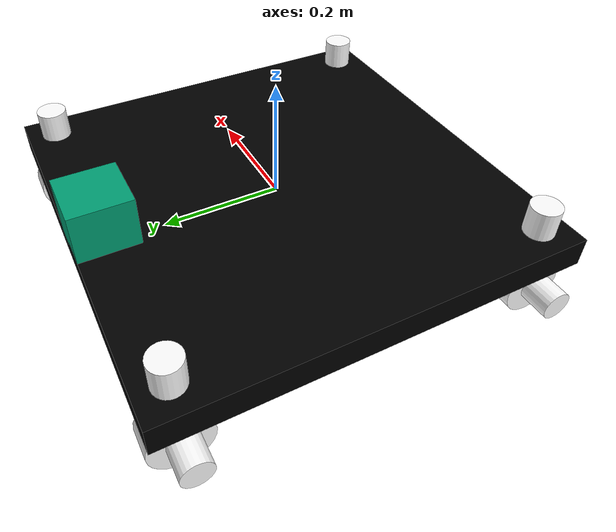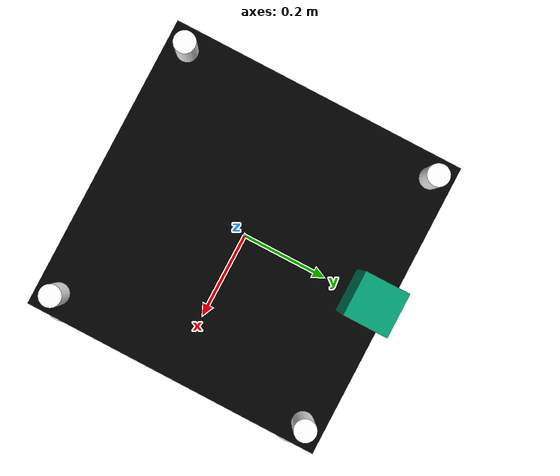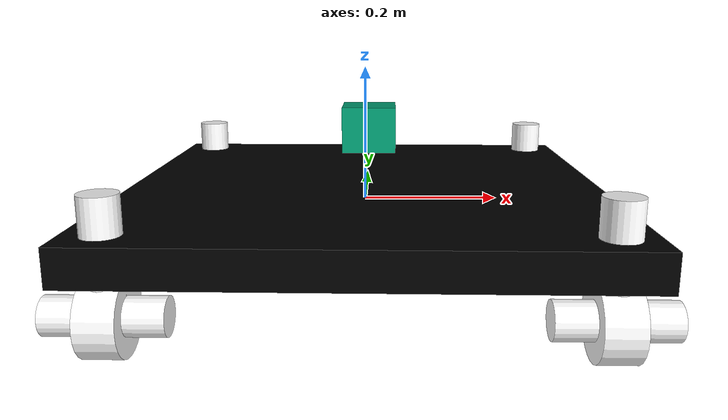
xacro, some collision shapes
<?xml version = "1.0"?>

<robot xmlns:xacro="http://www.ros.org/wiki/xacro" name="swerve_robot">
<xacro:include filename= "$(find dog_robot)/urdf/sewrve_wheel.xacro"/>

<!-- base link -->
<xacro:property name="base_link_l" value = "0.7"/>
<xacro:property name ="base_link_h" value= "0.05"/>

<!-- box -->
<xacro:property name = "box" value = "0.05"/>
<xacro:property name = "box_x" value = "0.38"/>
<xacro:property name = "box_y" value = "0"/>
<xacro:property name = "box_z" value = "0.04"/>

<!-- mass -->
<!-- box -->
<xacro:property name = "base_mass" value = "5"/>
<xacro:property name = "box" value = "0.05"/>
<xacro:property name = "box_x" value = "0.38"/>
<xacro:property name = "box_y" value = "0"/>
<xacro:property name = "box_z" value = "0.04"/>
<xacro:property name = "bixx" value = "0.0513"/>
<xacro:property name = "biyy" value = "0.0513"/>
<xacro:property name = "bizz" value = "0.102"/>

<link name="dummy">

</link>
<joint name="dummy_base" type = "fixed">
	<parent link="dummy"/>
	<child link = "base_link"/>

</joint>

<link name="base_link">
	<visual>
		<origin xyz="0 0 0" rpy="0 0 0"/>
		<geometry>
			<box size="${base_link_l} ${base_link_l} ${base_link_h}"/>
		</geometry>
		<material name = "black">
			<color rgba= "0.0 0.0 0.0 1.0"/>
		</material>
	</visual>
	<collision>
		<origin xyz="0 0 0" rpy="0 0 0"/>
		<geometry>
			<box size="${base_link_l} ${base_link_l} ${base_link_h}"/>
		</geometry>
		<material name = "black">
			<color rgba= "0.0 0.0 0.0 1.0"/>
		</material>
	</collision>
	<inertial>
		<mass value = "${base_mass}"/>
		<origin value ="0 0 0"/>
		<inertia ixx = "${bixx}" ixy="0" ixz ="0" iyy = "${biyy}" iyz ="0" izz = "${bizz}"/>
	</inertial>

</link>

<!--=============hokuyu================-->
  <joint name="hokuyo_joint" type="fixed">
    <axis xyz="0 1 0" />
    <origin xyz="0 0.3 0.06" rpy="0 0 0"/>
    <parent link="base_link"/>
    <child link="hokuyo_link"/>
  </joint>

  <!-- Hokuyo Laser -->
  <link name="hokuyo_link">
    <collision>
      <origin xyz="0 0 0" rpy="0 0 0"/>
      <geometry>
    <box size="0.1 0.1 0.1"/>
      </geometry>
    </collision>

    <visual>
      <origin xyz="0 0 0" rpy="0 0 0"/>
      <geometry>
        <mesh filename="package://dog_robot/meshes/hokuyo.dae"/>
      </geometry>
    </visual>

    <inertial>
      <mass value="1e-5" />
      <origin xyz="0 0 0" rpy="0 0 0"/>
      <inertia ixx="1e-6" ixy="0" ixz="0" iyy="1e-6" iyz="0" izz="1e-6" />
    </inertial>
  </link>
    <!-- hokuyo -->
  <gazebo reference="hokuyo_link">
    <sensor type="gpu_ray" name="head_hokuyo_sensor">
      <pose>0 0 0 0 0 0</pose>
      <visualize>true</visualize>
      <update_rate>40</update_rate>
      <ray>
        <scan>
          <horizontal>
            <samples>720</samples>
            <resolution>1</resolution>
            <min_angle>0</min_angle>
            <max_angle>3.14</max_angle>
          </horizontal>
        </scan>
        <range>
          <min>0.10</min>
          <max>30.0</max>
          <resolution>0.01</resolution>
        </range>
        <noise>
          <type>gaussian</type>
          <mean>0.0</mean>
          <stddev>0.01</stddev>
        </noise>
      </ray>
      <plugin name="gazebo_ros_head_hokuyo_controller" filename="libgazebo_ros_gpu_laser.so">
        <topicName>/rrbot/laser/scan</topicName>
        <frameName>hokuyo_link</frameName>
      </plugin>
    </sensor>
  </gazebo>

<xacro:motor prefix ="b1" parent="base_link" r="1" b="1"/>
<xacro:motor prefix ="b2" parent="base_link" r="1" b="-1"/>
<xacro:motor prefix ="f1" parent="base_link" r="-1" b="-1"/>
<xacro:motor prefix ="f2" parent="base_link" r="-1" b="1"/>

<gazebo>
    <plugin name="gazebo_ros_control" filename="libgazebo_ros_control.so">
      <robotNamespace>/swerve</robotNamespace>
      <robotSimType>gazebo_ros_control/DefaultRobotHWSim</robotSimType>
      		<odometryTopic>odom</odometryTopic>
		<odometryFrame>odom</odometryFrame>
		<odometryRate>20.0</odometryRate>
    </plugin>
</gazebo>
</robot>

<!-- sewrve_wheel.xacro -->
<robot name = "wheel" xmlns:xacro= "http:/www.ros.org/wiki/xacro">

	<!-- motor -->
	<xacro:property name="motor_r" value="0.025"/>
	<xacro:property name="motor_h" value= "0.15"/>

	<!-- motor mass -->
	<xacro:property name = "motor_mass" value = "0.5"/>

	<!-- wheel -->
	<xacro:property name = "wheel_r" value = "0.05"/>
	<xacro:property name = "wheel_h" value = "0.05" />

	<!-- wheel mass -->
	<xacro:property name = "wheel_mass" value = "0.6"/>

	<!-- wheel_moment of inertia -->
	<xacro:property name = "wixx" value = "0.00102"/>
	<xacro:property name ="wiyy" value ="0.00102"/>
	<xacro:property name = "wizz" value = "0.00016"/>

	<!-- effort -->
	<xacro:property name= "effort" value = "5"/>
	<xacro:property name="velocity" value = "50"/>

	<!-- motor1 location -->
    	<xacro:property name="motor_x" value = "0.3"/>
	<xacro:property name="motor_y" value = "0.3"/>
	<xacro:property name="motor_z" value = "0"/>
	<xacro:property name =  "mixx" value = "0.0005"/>
	<xacro:property name ="miyy" value ="0.0005"/>
	<xacro:property name = "mizz" value = "0.00075"/>
	<!-- wheel location -->
	<xacro:property name="wheel_x" value ="0.0025"/>
	<xacro:property name="wheel_y" value ="0.0025"/>
	<xacro:property name="wheel_z" value ="0"/>
	<!-- motor2 location -->
	<xacro:property name = "motor2_x" value = "0"/>
	<xacro:property name = "motor2_y" value = "0"/>
	<xacro:property name = "motor2_z" value ="-0.075"/>

	<xacro:macro name = "motor" params = "prefix parent r b">
		<joint name = "${prefix}_m1" type = "continuous">
			<parent link = "${parent}"/>
			<child link = "${prefix}_m1_link"/>
			<origin xyz = "${r*motor_x} ${b*motor_y} ${motor_z}"/>
			<axis xyz = "0 0 1" rpy = "0 0 1.57"/>
			<limit effort = "${effort}" velocity = "${velocity}" />
		</joint>
		<link name = "${prefix}_m1_link">
			<visual>
			<origin xyz = "0 0 0" rpy = "0 0 0"/>
			<geometry>
			<cylinder length="${motor_h}" radius = "${motor_r}"/>
			</geometry>
			<material name= "white">
			<color rgba="1.0 1.0 1.0 1.0"/>
			</material>
			</visual>
			<collision>
			<origin xyz ="0 0 0" rpy = "0 0 0"/>
			<geometry>
			<cylinder length="${motor_h}" radius = "${motor_r}"/>
			</geometry>
			<surface>
          		<friction>
            		<ode>
              			<mu>200.0</mu>
              			<mu2>100.0</mu2>
            		</ode>
          		</friction>
        			</surface>
			<material name= "white">
			<color rgba="1.0 1.0 1.0 1.0"/>
			</material>
			</collision>
			<inertial>
			<mass value = "${motor_mass}"/>
			<origin value ="0 0 0"/>
			<inertia ixx = "${mixx}" ixy="0" ixz ="0" iyy = "${miyy}" iyz ="0" izz = "${mizz}"/>
			</inertial>
		</link>

		<joint name = "${prefix}_m2" type = "fixed">
			<parent link = "${prefix}_m1_link"/>
			<child link = "${prefix}_m2_link"/>
			<origin xyz = "${motor2_x} ${motor2_y} ${motor2_z}" rpy = "0 1.57 0"/>
		</joint>
		<link name = "${prefix}_m2_link">
			<visual>
			<origin xyz="0 0 0" rpy = "0 0 0"/>
			<geometry>
			<cylinder length="${motor_h}" radius = "${motor_r}"/>
			</geometry>
			<material name= "white">
			<color rgba="1.0 1.0 1.0 1.0"/>
			</material>
			</visual>
			<collision>
			<origin xyz="0 0 0" rpy = "0 0 0"/>
			<geometry>
			<cylinder length="${motor_h}" radius = "${motor_r}"/>
			</geometry>
			<material name= "white">
			<color rgba="1.0 1.0 1.0 1.0"/>
			</material>
			</collision>
			<inertial>
			<mass value = "${motor_mass}"/>
			<origin xyz = "0 0 0"/>
			<inertia ixx="${mixx}" ixy = "0" ixz = "0" iyy = "${miyy}" iyz = "0" izz = "${mizz}"/>
			</inertial>
		</link>
		<joint name = "${prefix}_wheel" type = "continuous">
			<parent link = "${prefix}_m2_link"/>
			<child link = "${prefix}_wheel_link"/>
			<origin xyz = "${wheel_x} ${wheel_y} ${wheel_z}"/>
			<axis xyz = "0 0 1" rpy = "0 0 1.57"/>
			<limit effort = "${effort}" velocity = "${velocity}"/>
		</joint>
		<link name = "${prefix}_wheel_link">
			<visual>
			<origin xyz="0 0 0" rpy = "0 0 0"/>
			<geometry>
			<cylinder length = "${wheel_h}" radius ="${wheel_r}" />
			</geometry>
			<material name= "white">
			<color rgba="1.0 1.0 1.0 1.0"/>
			</material>
			</visual>
			<collision>
			<origin xyz="0 0 0" rpy = "0 0 0"/>
			<geometry>
			<cylinder length = "${wheel_h}" radius ="${wheel_r}" />
			</geometry>
			<surface>
          		<friction>
            		<ode>
              			<mu>200.0</mu>
              			<mu2>100.0</mu2>
            		</ode>
          		</friction>
        			</surface>
			<material name= "white">
			<color rgba="1.0 1.0 1.0 1.0"/>
			</material>
			</collision>
			<inertial>
			<mass value = "${wheel_mass}"/>
			<origin xyz = "0 0 0"/>
			<inertia ixx="${wixx}" ixy = "0" ixz = "0" iyy = "${wiyy}" iyz = "0" izz = "${wizz}"/>
			</inertial>
		</link>
		<transmission name = "${prefix}_t1">
			<type>transmission_interface/SimpleTransmission</type>
			<joint name = "${prefix}_m1">
			<hardwareInterface>hardware_interface/EffortJointInterface</hardwareInterface>
			</joint>
			<actuator name= "${prefix}_motor">
			<hardwareInterface>hardware_interface/EffortJointInterface</hardwareInterface>
      			<mechanicalReduction>1</mechanicalReduction>
			</actuator>
		</transmission>
		<transmission name = "${prefix}_t2">
			<type>transmission_interface/SimpleTransmission</type>
			<joint name = "${prefix}_wheel">
			<hardwareInterface>hardware_interface/VelocityJointInterface</hardwareInterface>
			</joint>
			<actuator name= "${prefix}_mw">
      			<mechanicalReduction>1</mechanicalReduction>
			</actuator>
		</transmission>
	</xacro:macro>
</robot>
